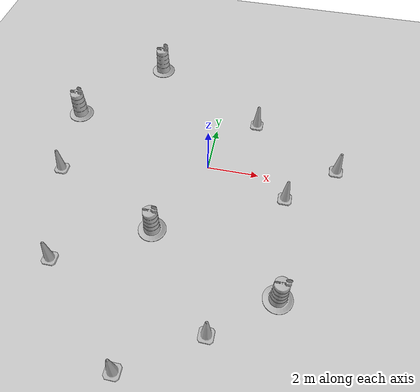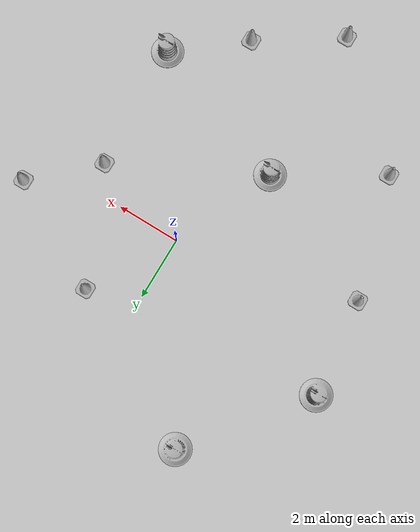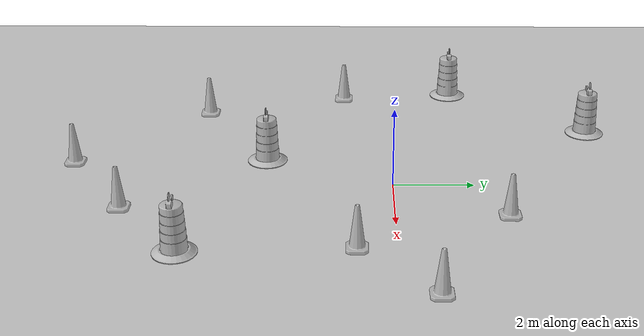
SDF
<sdf version="1.7">
 <world name="default">
  <light name="sun" type="directional">
   <pose>0 0 10 0 -0 0</pose>
   <diffuse>0.8 0.8 0.8 1</diffuse>
   <specular>0.2 0.2 0.2 1</specular>
   <attenuation>
    <range>1000</range>
    <constant>0.9</constant>
    <linear>0.01</linear>
    <quadratic>0.001</quadratic>
   </attenuation>
   <direction>-0.5 0.1 -0.9</direction>
   <spot><inner_angle>0</inner_angle><outer_angle>0</outer_angle><falloff>0</falloff></spot>
  </light>
  <model name="ground_plane">
   <static>1</static>
   <link name="link">
    <collision name="collision">
     <geometry><plane><normal>0 0 1</normal><size>100 100</size></plane></geometry>
     <surface>
      <contact><collide_bitmask>65535</collide_bitmask></contact>
      <friction><ode><mu>100</mu><mu2>50</mu2></ode></friction>
     </surface>
    </collision>
    <visual name="visual">
     <cast_shadows>0</cast_shadows>
     <geometry><plane><normal>0 0 1</normal><size>100 100</size></plane></geometry>
     <material>
      <script><uri>file://media/materials/scripts/gazebo.material</uri><name>Gazebo/Grey</name></script>
     </material>
    </visual>
   </link>
  </model>
  <gravity>0 0 -9.8</gravity>
  <magnetic_field>6e-06 2.3e-05 -4.2e-05</magnetic_field>
  <atmosphere type="adiabatic"/>
  <physics type="ode">
   <max_step_size>0.001</max_step_size>
   <real_time_factor>1</real_time_factor>
   <real_time_update_rate>1000</real_time_update_rate>
  </physics>
  <scene><ambient>0.4 0.4 0.4 1</ambient><background>0.7 0.7 0.7 1</background><shadows>1</shadows></scene>
  <audio><device>default</device></audio>
  <spherical_coordinates>
   <surface_model>EARTH_WGS84</surface_model>
   <latitude_deg>0</latitude_deg>
   <longitude_deg>0</longitude_deg>
   <elevation>0</elevation>
   <heading_deg>0</heading_deg>
  </spherical_coordinates>
  <model name="Construction Barrel">
   <link name="link">
    <inertial>
     <pose>0 0 0.4 0 -0 0</pose>
     <mass>500</mass>
     <inertia><ixx>51.2096</ixx><iyy>51.2096</iyy><izz>25</izz><ixy>0</ixy><ixz>0</ixz><iyz>0</iyz></inertia>
    </inertial>
    <collision name="collision">
     <geometry><mesh><uri>model://construction_barrel/meshes/construction_barrel.dae</uri></mesh></geometry>
    </collision>
    <visual name="visual">
     <geometry><mesh><uri>model://construction_barrel/meshes/construction_barrel.dae</uri></mesh></geometry>
    </visual>
   </link>
   <pose>-1.38597 -3.19781 0 1e-06 1e-06 -2e-05</pose>
  </model>
  <model name="Construction Cone">
   <link name="link">
    <collision name="collision">
     <geometry>
      <mesh><scale>10 10 10</scale><uri>model://construction_cone/meshes/construction_cone.dae</uri></mesh>
     </geometry>
    </collision>
    <visual name="visual">
     <geometry>
      <mesh><scale>10 10 10</scale><uri>model://construction_cone/meshes/construction_cone.dae</uri></mesh>
     </geometry>
    </visual>
    <inertial>
     <inertia><ixx>1</ixx><ixy>0</ixy><ixz>0</ixz><iyy>1</iyy><iyz>0</iyz><izz>1</izz></inertia>
     <mass>1</mass>
    </inertial>
   </link>
   <pose>3.12122 -0.902327 -1e-05 -0 -0 -0</pose>
  </model>
  <model name="Construction Cone_0">
   <link name="link">
    <collision name="collision">
     <geometry>
      <mesh><scale>10 10 10</scale><uri>model://construction_cone/meshes/construction_cone.dae</uri></mesh>
     </geometry>
    </collision>
    <visual name="visual">
     <geometry>
      <mesh><scale>10 10 10</scale><uri>model://construction_cone/meshes/construction_cone.dae</uri></mesh>
     </geometry>
    </visual>
    <inertial>
     <inertia><ixx>1</ixx><ixy>0</ixy><ixz>0</ixz><iyy>1</iyy><iyz>0</iyz><izz>1</izz></inertia>
     <mass>1</mass>
    </inertial>
   </link>
   <pose>1.58511 2.6729 -9e-06 -3e-06 -0 -0</pose>
  </model>
  <model name="Construction Barrel_0">
   <link name="link">
    <inertial>
     <pose>0 0 0.4 0 -0 0</pose>
     <mass>500</mass>
     <inertia><ixx>51.2096</ixx><iyy>51.2096</iyy><izz>25</izz><ixy>0</ixy><ixz>0</ixz><iyz>0</iyz></inertia>
    </inertial>
    <collision name="collision">
     <geometry><mesh><uri>model://construction_barrel/meshes/construction_barrel.dae</uri></mesh></geometry>
    </collision>
    <visual name="visual">
     <geometry><mesh><uri>model://construction_barrel/meshes/construction_barrel.dae</uri></mesh></geometry>
    </visual>
   </link>
   <pose>-3.21269 5.35593 -2e-06 4e-06 7e-06 -1.5e-05</pose>
  </model>
  <model name="Construction Barrel_clone">
   <link name="link">
    <inertial>
     <pose>0 0 0.4 0 -0 0</pose>
     <mass>500</mass>
     <inertia><ixx>51.2096</ixx><iyy>51.2096</iyy><izz>25</izz><ixy>0</ixy><ixz>0</ixz><iyz>0</iyz></inertia>
    </inertial>
    <collision name="collision">
     <geometry><mesh><uri>model://construction_barrel/meshes/construction_barrel.dae</uri></mesh></geometry>
    </collision>
    <visual name="visual">
     <geometry><mesh><uri>model://construction_barrel/meshes/construction_barrel.dae</uri></mesh></geometry>
    </visual>
   </link>
   <pose>3.29718 -4.88825 -0 0 0 -1.5e-05</pose>
  </model>
  <model name="Construction Barrel_clone_0">
   <link name="link">
    <inertial>
     <pose>0 0 0.4 0 -0 0</pose>
     <mass>500</mass>
     <inertia><ixx>51.2096</ixx><iyy>51.2096</iyy><izz>25</izz><ixy>0</ixy><ixz>0</ixz><iyz>0</iyz></inertia>
    </inertial>
    <collision name="collision">
     <geometry><mesh><uri>model://construction_barrel/meshes/construction_barrel.dae</uri></mesh></geometry>
    </collision>
    <visual name="visual">
     <geometry><mesh><uri>model://construction_barrel/meshes/construction_barrel.dae</uri></mesh></geometry>
    </visual>
   </link>
   <pose>-5.9742 1.82654 -2e-06 -5e-06 -4e-06 -1.6e-05</pose>
  </model>
  <model name="Construction Cone_clone">
   <link name="link">
    <collision name="collision">
     <geometry>
      <mesh><scale>10 10 10</scale><uri>model://construction_cone/meshes/construction_cone.dae</uri></mesh>
     </geometry>
    </collision>
    <visual name="visual">
     <geometry>
      <mesh><scale>10 10 10</scale><uri>model://construction_cone/meshes/construction_cone.dae</uri></mesh>
     </geometry>
    </visual>
    <inertial>
     <inertia><ixx>1</ixx><ixy>0</ixy><ixz>0</ixz><iyy>1</iyy><iyz>0</iyz><izz>1</izz></inertia>
     <mass>1</mass>
    </inertial>
   </link>
   <pose>1.26916 -6.52072 -0 0 -1e-06 0</pose>
  </model>
  <model name="Construction Cone_clone_0">
   <link name="link">
    <collision name="collision">
     <geometry>
      <mesh><scale>10 10 10</scale><uri>model://construction_cone/meshes/construction_cone.dae</uri></mesh>
     </geometry>
    </collision>
    <visual name="visual">
     <geometry>
      <mesh><scale>10 10 10</scale><uri>model://construction_cone/meshes/construction_cone.dae</uri></mesh>
     </geometry>
    </visual>
    <inertial>
     <inertia><ixx>1</ixx><ixy>0</ixy><ixz>0</ixz><iyy>1</iyy><iyz>0</iyz><izz>1</izz></inertia>
     <mass>1</mass>
    </inertial>
   </link>
   <pose>-5.61071 -1.25319 -0 1e-06 -0 0</pose>
  </model>
  <model name="Construction Cone_clone_1">
   <link name="link">
    <collision name="collision">
     <geometry>
      <mesh><scale>10 10 10</scale><uri>model://construction_cone/meshes/construction_cone.dae</uri></mesh>
     </geometry>
    </collision>
    <visual name="visual">
     <geometry>
      <mesh><scale>10 10 10</scale><uri>model://construction_cone/meshes/construction_cone.dae</uri></mesh>
     </geometry>
    </visual>
    <inertial>
     <inertia><ixx>1</ixx><ixy>0</ixy><ixz>0</ixz><iyy>1</iyy><iyz>0</iyz><izz>1</izz></inertia>
     <mass>1</mass>
    </inertial>
   </link>
   <pose>4.9533 0.820247 -0 0 -1e-06 0</pose>
  </model>
  <model name="Construction Cone_clone_2">
   <link name="link">
    <collision name="collision">
     <geometry>
      <mesh><scale>10 10 10</scale><uri>model://construction_cone/meshes/construction_cone.dae</uri></mesh>
     </geometry>
    </collision>
    <visual name="visual">
     <geometry>
      <mesh><scale>10 10 10</scale><uri>model://construction_cone/meshes/construction_cone.dae</uri></mesh>
     </geometry>
    </visual>
    <inertial>
     <inertia><ixx>1</ixx><ixy>0</ixy><ixz>0</ixz><iyy>1</iyy><iyz>0</iyz><izz>1</izz></inertia>
     <mass>1</mass>
    </inertial>
   </link>
   <pose>-4.4932 -5.06012 -1e-06 4e-06 -0 0</pose>
  </model>
  <model name="Construction Cone_clone_3">
   <link name="link">
    <collision name="collision">
     <geometry>
      <mesh><scale>10 10 10</scale><uri>model://construction_cone/meshes/construction_cone.dae</uri></mesh>
     </geometry>
    </collision>
    <visual name="visual">
     <geometry>
      <mesh><scale>10 10 10</scale><uri>model://construction_cone/meshes/construction_cone.dae</uri></mesh>
     </geometry>
    </visual>
    <inertial>
     <inertia><ixx>1</ixx><ixy>0</ixy><ixz>0</ixz><iyy>1</iyy><iyz>0</iyz><izz>1</izz></inertia>
     <mass>1</mass>
    </inertial>
   </link>
   <pose>-1.207 -8.14336 -0 0 -1e-06 0</pose>
  </model>
 </world>
</sdf>
